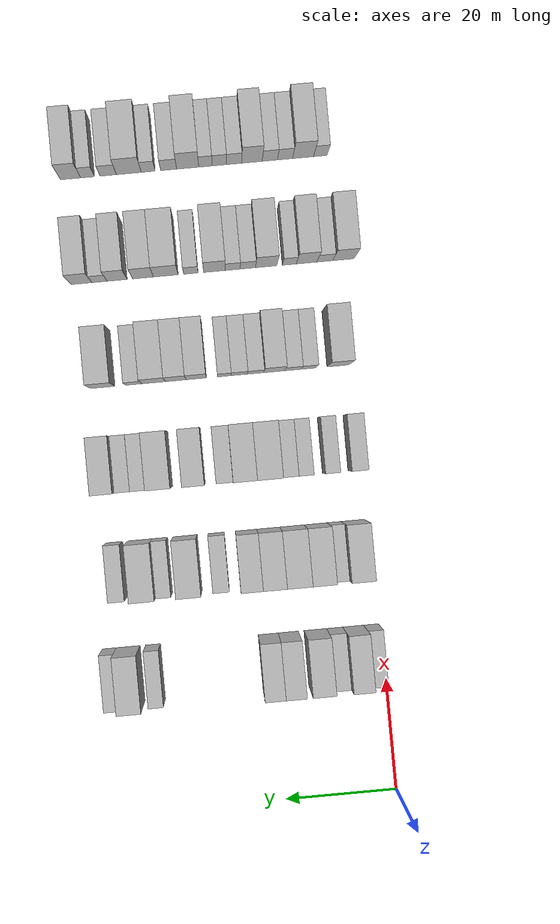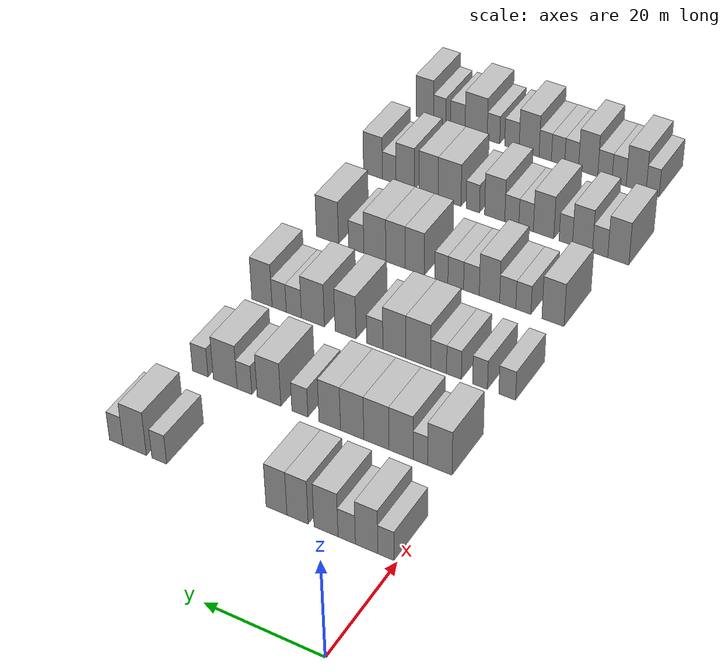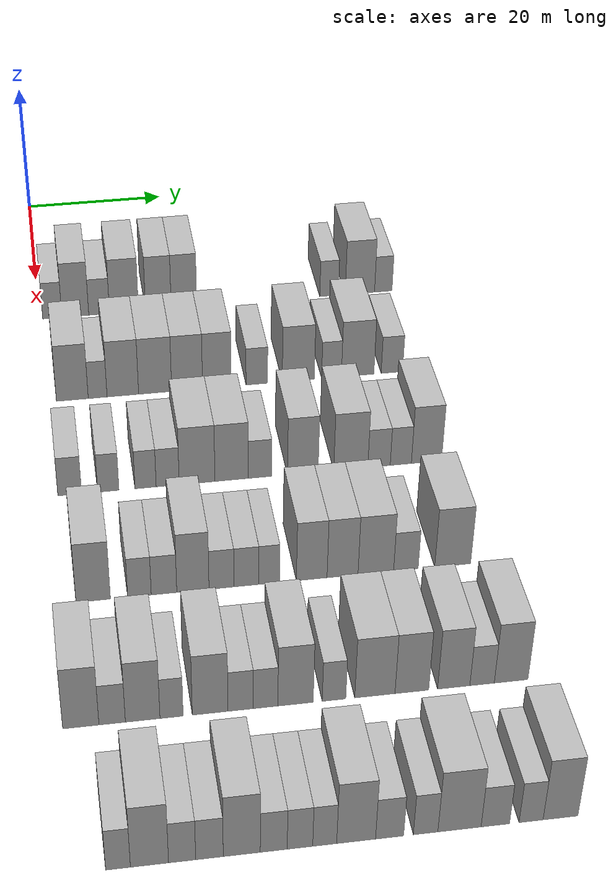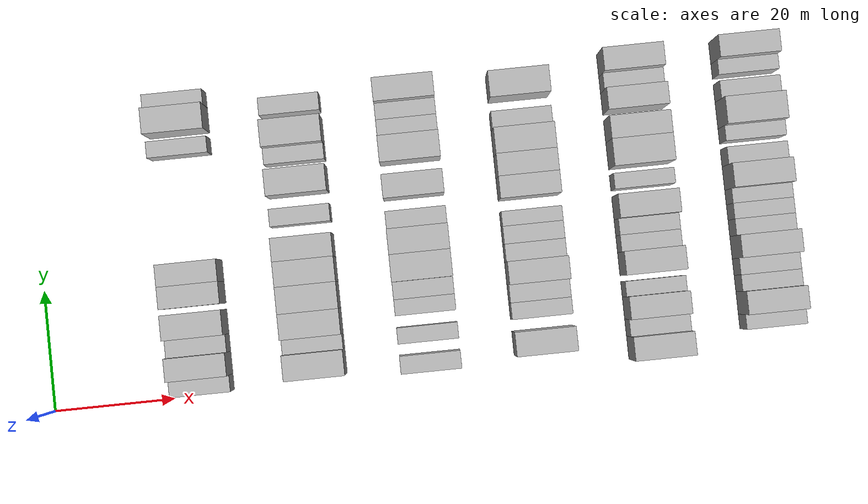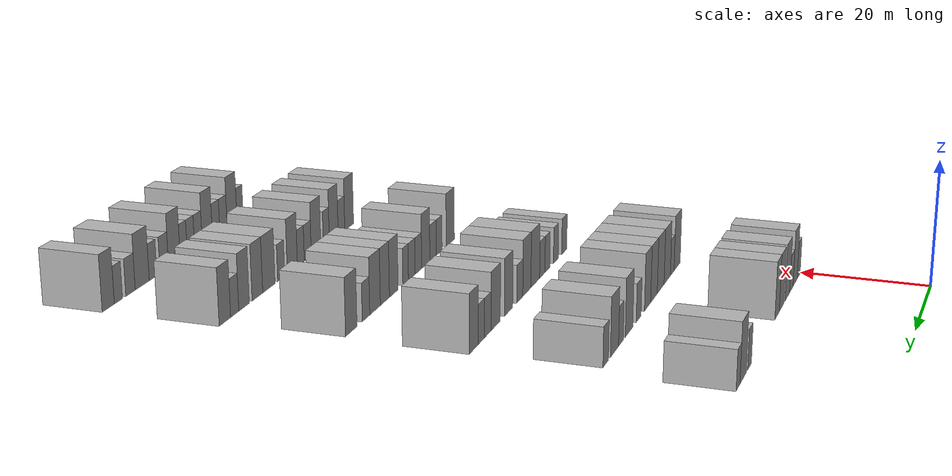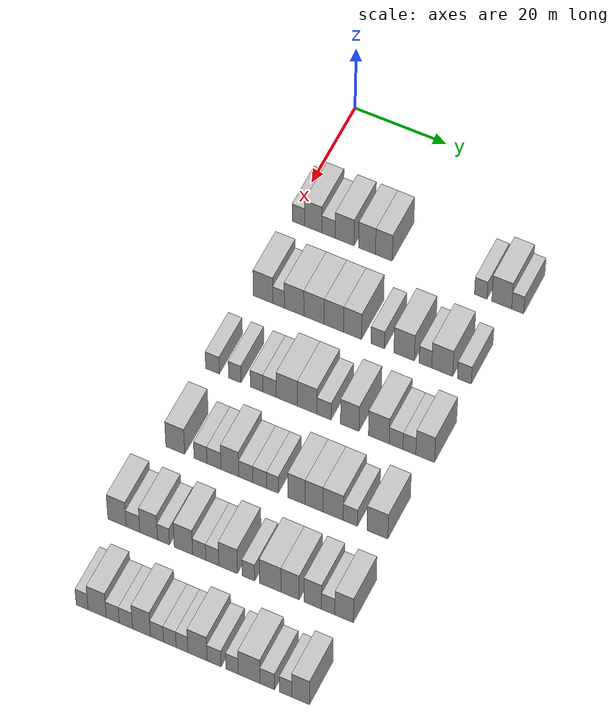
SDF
<sdf version="1.6">
 <world name="default">
  <model name="building_85">
   <static>1</static>
   <pose>25.0000 1.8815 0 0.000000 0.000000 0.000000</pose>
   <link name="link">
    <pose>0 0 3.00 0 0 0</pose>
    <collision name="collision"><geometry><box><size>10.0000 2.6912 6.0000</size></box></geometry></collision>
    <visual name="visual">
     <cast_shadows>0</cast_shadows>
     <geometry><box><size>10.0000 2.6912 6.0000</size></box></geometry>
     <material>
      <script>
       <uri>model://HANNAS_wall/materials/scripts</uri>
       <uri>model://HANNAS_wall/materials/textures</uri>
       <name>vrc/HANNAS_wall</name>
      </script>
     </material>
    </visual>
   </link>
  </model>
  <model name="building_86">
   <static>1</static>
   <pose>25.0000 5.1126 0 0.000000 0.000000 0.000000</pose>
   <link name="link">
    <pose>0 0 4.50 0 0 0</pose>
    <collision name="collision"><geometry><box><size>10.0000 3.7710 9.0000</size></box></geometry></collision>
    <visual name="visual">
     <cast_shadows>0</cast_shadows>
     <geometry><box><size>10.0000 3.7710 9.0000</size></box></geometry>
     <material>
      <script>
       <uri>model://HANNAS_wall/materials/scripts</uri>
       <uri>model://HANNAS_wall/materials/textures</uri>
       <name>vrc/HANNAS_wall</name>
      </script>
     </material>
    </visual>
   </link>
  </model>
  <model name="building_87">
   <static>1</static>
   <pose>25.0000 8.4592 0 0.000000 0.000000 0.000000</pose>
   <link name="link">
    <pose>0 0 3.00 0 0 0</pose>
    <collision name="collision"><geometry><box><size>10.0000 2.9221 6.0000</size></box></geometry></collision>
    <visual name="visual">
     <cast_shadows>0</cast_shadows>
     <geometry><box><size>10.0000 2.9221 6.0000</size></box></geometry>
     <material>
      <script>
       <uri>model://HANNAS_wall/materials/scripts</uri>
       <uri>model://HANNAS_wall/materials/textures</uri>
       <name>vrc/HANNAS_wall</name>
      </script>
     </material>
    </visual>
   </link>
  </model>
  <model name="building_88">
   <static>1</static>
   <pose>25.0000 11.9677 0 0.000000 0.000000 0.000000</pose>
   <link name="link">
    <pose>0 0 4.50 0 0 0</pose>
    <collision name="collision"><geometry><box><size>10.0000 4.0948 9.0000</size></box></geometry></collision>
    <visual name="visual">
     <cast_shadows>0</cast_shadows>
     <geometry><box><size>10.0000 4.0948 9.0000</size></box></geometry>
     <material>
      <script>
       <uri>model://HANNAS_wall/materials/scripts</uri>
       <uri>model://HANNAS_wall/materials/textures</uri>
       <name>vrc/HANNAS_wall</name>
      </script>
     </material>
    </visual>
   </link>
  </model>
  <model name="building_89">
   <static>1</static>
   <pose>25.0000 16.8362 0 0.000000 0.000000 0.000000</pose>
   <link name="link">
    <pose>0 0 4.50 0 0 0</pose>
    <collision name="collision"><geometry><box><size>10.0000 3.6422 9.0000</size></box></geometry></collision>
    <visual name="visual">
     <cast_shadows>0</cast_shadows>
     <geometry><box><size>10.0000 3.6422 9.0000</size></box></geometry>
     <material>
      <script>
       <uri>model://HANNAS_wall/materials/scripts</uri>
       <uri>model://HANNAS_wall/materials/textures</uri>
       <name>vrc/HANNAS_wall</name>
      </script>
     </material>
    </visual>
   </link>
  </model>
  <model name="building_90">
   <static>1</static>
   <pose>25.0000 20.4708 0 0.000000 0.000000 0.000000</pose>
   <link name="link">
    <pose>0 0 4.50 0 0 0</pose>
    <collision name="collision"><geometry><box><size>10.0000 3.6269 9.0000</size></box></geometry></collision>
    <visual name="visual">
     <cast_shadows>0</cast_shadows>
     <geometry><box><size>10.0000 3.6269 9.0000</size></box></geometry>
     <material>
      <script>
       <uri>model://HANNAS_wall/materials/scripts</uri>
       <uri>model://HANNAS_wall/materials/textures</uri>
       <name>vrc/HANNAS_wall</name>
      </script>
     </material>
    </visual>
   </link>
  </model>
  <model name="building_91">
   <static>1</static>
   <pose>25.0000 41.3235 0 0.000000 0.000000 0.000000</pose>
   <link name="link">
    <pose>0 0 3.00 0 0 0</pose>
    <collision name="collision"><geometry><box><size>10.0000 2.6928 6.0000</size></box></geometry></collision>
    <visual name="visual">
     <cast_shadows>0</cast_shadows>
     <geometry><box><size>10.0000 2.6928 6.0000</size></box></geometry>
     <material>
      <script>
       <uri>model://HANNAS_wall/materials/scripts</uri>
       <uri>model://HANNAS_wall/materials/textures</uri>
       <name>vrc/HANNAS_wall</name>
      </script>
     </material>
    </visual>
   </link>
  </model>
  <model name="building_92">
   <static>1</static>
   <pose>25.0000 45.8018 0 0.000000 0.000000 0.000000</pose>
   <link name="link">
    <pose>0 0 4.50 0 0 0</pose>
    <collision name="collision"><geometry><box><size>10.0000 4.2638 9.0000</size></box></geometry></collision>
    <visual name="visual">
     <cast_shadows>0</cast_shadows>
     <geometry><box><size>10.0000 4.2638 9.0000</size></box></geometry>
     <material>
      <script>
       <uri>model://HANNAS_wall/materials/scripts</uri>
       <uri>model://HANNAS_wall/materials/textures</uri>
       <name>vrc/HANNAS_wall</name>
      </script>
     </material>
    </visual>
   </link>
  </model>
  <model name="building_93">
   <static>1</static>
   <pose>25.0000 49.2049 0 0.000000 0.000000 0.000000</pose>
   <link name="link">
    <pose>0 0 3.00 0 0 0</pose>
    <collision name="collision"><geometry><box><size>10.0000 2.5425 6.0000</size></box></geometry></collision>
    <visual name="visual">
     <cast_shadows>0</cast_shadows>
     <geometry><box><size>10.0000 2.5425 6.0000</size></box></geometry>
     <material>
      <script>
       <uri>model://HANNAS_wall/materials/scripts</uri>
       <uri>model://HANNAS_wall/materials/textures</uri>
       <name>vrc/HANNAS_wall</name>
      </script>
     </material>
    </visual>
   </link>
  </model>
  <model name="building_255">
   <static>1</static>
   <pose>44.0000 3.5003 0 0.000000 0.000000 0.000000</pose>
   <link name="link">
    <pose>0 0 4.50 0 0 0</pose>
    <collision name="collision"><geometry><box><size>10.0000 4.2060 9.0000</size></box></geometry></collision>
    <visual name="visual">
     <cast_shadows>0</cast_shadows>
     <geometry><box><size>10.0000 4.2060 9.0000</size></box></geometry>
     <material>
      <script>
       <uri>model://HANNAS_wall/materials/scripts</uri>
       <uri>model://HANNAS_wall/materials/textures</uri>
       <name>vrc/HANNAS_wall</name>
      </script>
     </material>
    </visual>
   </link>
  </model>
  <model name="building_256">
   <static>1</static>
   <pose>44.0000 6.8489 0 0.000000 0.000000 0.000000</pose>
   <link name="link">
    <pose>0 0 3.00 0 0 0</pose>
    <collision name="collision"><geometry><box><size>10.0000 2.4912 6.0000</size></box></geometry></collision>
    <visual name="visual">
     <cast_shadows>0</cast_shadows>
     <geometry><box><size>10.0000 2.4912 6.0000</size></box></geometry>
     <material>
      <script>
       <uri>model://HANNAS_wall/materials/scripts</uri>
       <uri>model://HANNAS_wall/materials/textures</uri>
       <name>vrc/HANNAS_wall</name>
      </script>
     </material>
    </visual>
   </link>
  </model>
  <model name="building_257">
   <static>1</static>
   <pose>44.0000 10.1941 0 0.000000 0.000000 0.000000</pose>
   <link name="link">
    <pose>0 0 4.50 0 0 0</pose>
    <collision name="collision"><geometry><box><size>10.0000 4.1992 9.0000</size></box></geometry></collision>
    <visual name="visual">
     <cast_shadows>0</cast_shadows>
     <geometry><box><size>10.0000 4.1992 9.0000</size></box></geometry>
     <material>
      <script>
       <uri>model://HANNAS_wall/materials/scripts</uri>
       <uri>model://HANNAS_wall/materials/textures</uri>
       <name>vrc/HANNAS_wall</name>
      </script>
     </material>
    </visual>
   </link>
  </model>
  <model name="building_258">
   <static>1</static>
   <pose>44.0000 14.4995 0 0.000000 0.000000 0.000000</pose>
   <link name="link">
    <pose>0 0 4.50 0 0 0</pose>
    <collision name="collision"><geometry><box><size>10.0000 4.4117 9.0000</size></box></geometry></collision>
    <visual name="visual">
     <cast_shadows>0</cast_shadows>
     <geometry><box><size>10.0000 4.4117 9.0000</size></box></geometry>
     <material>
      <script>
       <uri>model://HANNAS_wall/materials/scripts</uri>
       <uri>model://HANNAS_wall/materials/textures</uri>
       <name>vrc/HANNAS_wall</name>
      </script>
     </material>
    </visual>
   </link>
  </model>
  <model name="building_259">
   <static>1</static>
   <pose>44.0000 18.7739 0 0.000000 0.000000 0.000000</pose>
   <link name="link">
    <pose>0 0 4.50 0 0 0</pose>
    <collision name="collision"><geometry><box><size>10.0000 4.1373 9.0000</size></box></geometry></collision>
    <visual name="visual">
     <cast_shadows>0</cast_shadows>
     <geometry><box><size>10.0000 4.1373 9.0000</size></box></geometry>
     <material>
      <script>
       <uri>model://HANNAS_wall/materials/scripts</uri>
       <uri>model://HANNAS_wall/materials/textures</uri>
       <name>vrc/HANNAS_wall</name>
      </script>
     </material>
    </visual>
   </link>
  </model>
  <model name="building_260">
   <static>1</static>
   <pose>44.0000 22.7693 0 0.000000 0.000000 0.000000</pose>
   <link name="link">
    <pose>0 0 4.50 0 0 0</pose>
    <collision name="collision"><geometry><box><size>10.0000 3.8533 9.0000</size></box></geometry></collision>
    <visual name="visual">
     <cast_shadows>0</cast_shadows>
     <geometry><box><size>10.0000 3.8533 9.0000</size></box></geometry>
     <material>
      <script>
       <uri>model://HANNAS_wall/materials/scripts</uri>
       <uri>model://HANNAS_wall/materials/textures</uri>
       <name>vrc/HANNAS_wall</name>
      </script>
     </material>
    </visual>
   </link>
  </model>
  <model name="building_261">
   <static>1</static>
   <pose>44.0000 28.1462 0 0.000000 0.000000 0.000000</pose>
   <link name="link">
    <pose>0 0 3.00 0 0 0</pose>
    <collision name="collision"><geometry><box><size>10.0000 2.9004 6.0000</size></box></geometry></collision>
    <visual name="visual">
     <cast_shadows>0</cast_shadows>
     <geometry><box><size>10.0000 2.9004 6.0000</size></box></geometry>
     <material>
      <script>
       <uri>model://HANNAS_wall/materials/scripts</uri>
       <uri>model://HANNAS_wall/materials/textures</uri>
       <name>vrc/HANNAS_wall</name>
      </script>
     </material>
    </visual>
   </link>
  </model>
  <model name="building_262">
   <static>1</static>
   <pose>44.0000 33.7725 0 0.000000 0.000000 0.000000</pose>
   <link name="link">
    <pose>0 0 4.50 0 0 0</pose>
    <collision name="collision"><geometry><box><size>10.0000 4.3523 9.0000</size></box></geometry></collision>
    <visual name="visual">
     <cast_shadows>0</cast_shadows>
     <geometry><box><size>10.0000 4.3523 9.0000</size></box></geometry>
     <material>
      <script>
       <uri>model://HANNAS_wall/materials/scripts</uri>
       <uri>model://HANNAS_wall/materials/textures</uri>
       <name>vrc/HANNAS_wall</name>
      </script>
     </material>
    </visual>
   </link>
  </model>
  <model name="building_263">
   <static>1</static>
   <pose>44.0000 38.2963 0 0.000000 0.000000 0.000000</pose>
   <link name="link">
    <pose>0 0 3.00 0 0 0</pose>
    <collision name="collision"><geometry><box><size>10.0000 2.6953 6.0000</size></box></geometry></collision>
    <visual name="visual">
     <cast_shadows>0</cast_shadows>
     <geometry><box><size>10.0000 2.6953 6.0000</size></box></geometry>
     <material>
      <script>
       <uri>model://HANNAS_wall/materials/scripts</uri>
       <uri>model://HANNAS_wall/materials/textures</uri>
       <name>vrc/HANNAS_wall</name>
      </script>
     </material>
    </visual>
   </link>
  </model>
  <model name="building_264">
   <static>1</static>
   <pose>44.0000 41.8686 0 0.000000 0.000000 0.000000</pose>
   <link name="link">
    <pose>0 0 4.50 0 0 0</pose>
    <collision name="collision"><geometry><box><size>10.0000 4.4491 9.0000</size></box></geometry></collision>
    <visual name="visual">
     <cast_shadows>0</cast_shadows>
     <geometry><box><size>10.0000 4.4491 9.0000</size></box></geometry>
     <material>
      <script>
       <uri>model://HANNAS_wall/materials/scripts</uri>
       <uri>model://HANNAS_wall/materials/textures</uri>
       <name>vrc/HANNAS_wall</name>
      </script>
     </material>
    </visual>
   </link>
  </model>
  <model name="building_265">
   <static>1</static>
   <pose>44.0000 46.5612 0 0.000000 0.000000 0.000000</pose>
   <link name="link">
    <pose>0 0 3.00 0 0 0</pose>
    <collision name="collision"><geometry><box><size>10.0000 2.9361 6.0000</size></box></geometry></collision>
    <visual name="visual">
     <cast_shadows>0</cast_shadows>
     <geometry><box><size>10.0000 2.9361 6.0000</size></box></geometry>
     <material>
      <script>
       <uri>model://HANNAS_wall/materials/scripts</uri>
       <uri>model://HANNAS_wall/materials/textures</uri>
       <name>vrc/HANNAS_wall</name>
      </script>
     </material>
    </visual>
   </link>
  </model>
  <model name="building_413">
   <static>1</static>
   <pose>63.0000 1.9904 0 0.000000 0.000000 0.000000</pose>
   <link name="link">
    <pose>0 0 3.00 0 0 0</pose>
    <collision name="collision"><geometry><box><size>10.0000 2.9390 6.0000</size></box></geometry></collision>
    <visual name="visual">
     <cast_shadows>0</cast_shadows>
     <geometry><box><size>10.0000 2.9390 6.0000</size></box></geometry>
     <material>
      <script>
       <uri>model://HANNAS_wall/materials/scripts</uri>
       <uri>model://HANNAS_wall/materials/textures</uri>
       <name>vrc/HANNAS_wall</name>
      </script>
     </material>
    </visual>
   </link>
  </model>
  <model name="building_414">
   <static>1</static>
   <pose>63.0000 6.7818 0 0.000000 0.000000 0.000000</pose>
   <link name="link">
    <pose>0 0 3.00 0 0 0</pose>
    <collision name="collision"><geometry><box><size>10.0000 2.6438 6.0000</size></box></geometry></collision>
    <visual name="visual">
     <cast_shadows>0</cast_shadows>
     <geometry><box><size>10.0000 2.6438 6.0000</size></box></geometry>
     <material>
      <script>
       <uri>model://HANNAS_wall/materials/scripts</uri>
       <uri>model://HANNAS_wall/materials/textures</uri>
       <name>vrc/HANNAS_wall</name>
      </script>
     </material>
    </visual>
   </link>
  </model>
  <model name="building_415">
   <static>1</static>
   <pose>63.0000 11.4247 0 0.000000 0.000000 0.000000</pose>
   <link name="link">
    <pose>0 0 3.00 0 0 0</pose>
    <collision name="collision"><geometry><box><size>10.0000 2.6420 6.0000</size></box></geometry></collision>
    <visual name="visual">
     <cast_shadows>0</cast_shadows>
     <geometry><box><size>10.0000 2.6420 6.0000</size></box></geometry>
     <material>
      <script>
       <uri>model://HANNAS_wall/materials/scripts</uri>
       <uri>model://HANNAS_wall/materials/textures</uri>
       <name>vrc/HANNAS_wall</name>
      </script>
     </material>
    </visual>
   </link>
  </model>
  <model name="building_416">
   <static>1</static>
   <pose>63.0000 14.1887 0 0.000000 0.000000 0.000000</pose>
   <link name="link">
    <pose>0 0 3.00 0 0 0</pose>
    <collision name="collision"><geometry><box><size>10.0000 2.8860 6.0000</size></box></geometry></collision>
    <visual name="visual">
     <cast_shadows>0</cast_shadows>
     <geometry><box><size>10.0000 2.8860 6.0000</size></box></geometry>
     <material>
      <script>
       <uri>model://HANNAS_wall/materials/scripts</uri>
       <uri>model://HANNAS_wall/materials/textures</uri>
       <name>vrc/HANNAS_wall</name>
      </script>
     </material>
    </visual>
   </link>
  </model>
  <model name="building_417">
   <static>1</static>
   <pose>63.0000 17.8722 0 0.000000 0.000000 0.000000</pose>
   <link name="link">
    <pose>0 0 4.50 0 0 0</pose>
    <collision name="collision"><geometry><box><size>10.0000 4.4809 9.0000</size></box></geometry></collision>
    <visual name="visual">
     <cast_shadows>0</cast_shadows>
     <geometry><box><size>10.0000 4.4809 9.0000</size></box></geometry>
     <material>
      <script>
       <uri>model://HANNAS_wall/materials/scripts</uri>
       <uri>model://HANNAS_wall/materials/textures</uri>
       <name>vrc/HANNAS_wall</name>
      </script>
     </material>
    </visual>
   </link>
  </model>
  <model name="building_418">
   <static>1</static>
   <pose>63.0000 22.2134 0 0.000000 0.000000 0.000000</pose>
   <link name="link">
    <pose>0 0 4.50 0 0 0</pose>
    <collision name="collision"><geometry><box><size>10.0000 4.2014 9.0000</size></box></geometry></collision>
    <visual name="visual">
     <cast_shadows>0</cast_shadows>
     <geometry><box><size>10.0000 4.2014 9.0000</size></box></geometry>
     <material>
      <script>
       <uri>model://HANNAS_wall/materials/scripts</uri>
       <uri>model://HANNAS_wall/materials/textures</uri>
       <name>vrc/HANNAS_wall</name>
      </script>
     </material>
    </visual>
   </link>
  </model>
  <model name="building_419">
   <static>1</static>
   <pose>63.0000 25.8032 0 0.000000 0.000000 0.000000</pose>
   <link name="link">
    <pose>0 0 3.00 0 0 0</pose>
    <collision name="collision"><geometry><box><size>10.0000 2.9782 6.0000</size></box></geometry></collision>
    <visual name="visual">
     <cast_shadows>0</cast_shadows>
     <geometry><box><size>10.0000 2.9782 6.0000</size></box></geometry>
     <material>
      <script>
       <uri>model://HANNAS_wall/materials/scripts</uri>
       <uri>model://HANNAS_wall/materials/textures</uri>
       <name>vrc/HANNAS_wall</name>
      </script>
     </material>
    </visual>
   </link>
  </model>
  <model name="building_420">
   <static>1</static>
   <pose>63.0000 31.2468 0 0.000000 0.000000 0.000000</pose>
   <link name="link">
    <pose>0 0 4.50 0 0 0</pose>
    <collision name="collision"><geometry><box><size>10.0000 3.9089 9.0000</size></box></geometry></collision>
    <visual name="visual">
     <cast_shadows>0</cast_shadows>
     <geometry><box><size>10.0000 3.9089 9.0000</size></box></geometry>
     <material>
      <script>
       <uri>model://HANNAS_wall/materials/scripts</uri>
       <uri>model://HANNAS_wall/materials/textures</uri>
       <name>vrc/HANNAS_wall</name>
      </script>
     </material>
    </visual>
   </link>
  </model>
  <model name="building_421">
   <static>1</static>
   <pose>63.0000 37.3847 0 0.000000 0.000000 0.000000</pose>
   <link name="link">
    <pose>0 0 4.50 0 0 0</pose>
    <collision name="collision"><geometry><box><size>10.0000 4.3669 9.0000</size></box></geometry></collision>
    <visual name="visual">
     <cast_shadows>0</cast_shadows>
     <geometry><box><size>10.0000 4.3669 9.0000</size></box></geometry>
     <material>
      <script>
       <uri>model://HANNAS_wall/materials/scripts</uri>
       <uri>model://HANNAS_wall/materials/textures</uri>
       <name>vrc/HANNAS_wall</name>
      </script>
     </material>
    </visual>
   </link>
  </model>
  <model name="building_422">
   <static>1</static>
   <pose>63.0000 41.0091 0 0.000000 0.000000 0.000000</pose>
   <link name="link">
    <pose>0 0 3.00 0 0 0</pose>
    <collision name="collision"><geometry><box><size>10.0000 2.8818 6.0000</size></box></geometry></collision>
    <visual name="visual">
     <cast_shadows>0</cast_shadows>
     <geometry><box><size>10.0000 2.8818 6.0000</size></box></geometry>
     <material>
      <script>
       <uri>model://HANNAS_wall/materials/scripts</uri>
       <uri>model://HANNAS_wall/materials/textures</uri>
       <name>vrc/HANNAS_wall</name>
      </script>
     </material>
    </visual>
   </link>
  </model>
  <model name="building_423">
   <static>1</static>
   <pose>63.0000 43.8126 0 0.000000 0.000000 0.000000</pose>
   <link name="link">
    <pose>0 0 3.00 0 0 0</pose>
    <collision name="collision"><geometry><box><size>10.0000 2.7251 6.0000</size></box></geometry></collision>
    <visual name="visual">
     <cast_shadows>0</cast_shadows>
     <geometry><box><size>10.0000 2.7251 6.0000</size></box></geometry>
     <material>
      <script>
       <uri>model://HANNAS_wall/materials/scripts</uri>
       <uri>model://HANNAS_wall/materials/textures</uri>
       <name>vrc/HANNAS_wall</name>
      </script>
     </material>
    </visual>
   </link>
  </model>
  <model name="building_424">
   <static>1</static>
   <pose>63.0000 47.1260 0 0.000000 0.000000 0.000000</pose>
   <link name="link">
    <pose>0 0 4.50 0 0 0</pose>
    <collision name="collision"><geometry><box><size>10.0000 3.9017 9.0000</size></box></geometry></collision>
    <visual name="visual">
     <cast_shadows>0</cast_shadows>
     <geometry><box><size>10.0000 3.9017 9.0000</size></box></geometry>
     <material>
      <script>
       <uri>model://HANNAS_wall/materials/scripts</uri>
       <uri>model://HANNAS_wall/materials/textures</uri>
       <name>vrc/HANNAS_wall</name>
      </script>
     </material>
    </visual>
   </link>
  </model>
  <model name="building_595">
   <static>1</static>
   <pose>82.0000 3.5405 0 0.000000 0.000000 0.000000</pose>
   <link name="link">
    <pose>0 0 4.50 0 0 0</pose>
    <collision name="collision"><geometry><box><size>10.0000 3.9927 9.0000</size></box></geometry></collision>
    <visual name="visual">
     <cast_shadows>0</cast_shadows>
     <geometry><box><size>10.0000 3.9927 9.0000</size></box></geometry>
     <material>
      <script>
       <uri>model://HANNAS_wall/materials/scripts</uri>
       <uri>model://HANNAS_wall/materials/textures</uri>
       <name>vrc/HANNAS_wall</name>
      </script>
     </material>
    </visual>
   </link>
  </model>
  <model name="building_596">
   <static>1</static>
   <pose>82.0000 8.9107 0 0.000000 0.000000 0.000000</pose>
   <link name="link">
    <pose>0 0 3.00 0 0 0</pose>
    <collision name="collision"><geometry><box><size>10.0000 2.7477 6.0000</size></box></geometry></collision>
    <visual name="visual">
     <cast_shadows>0</cast_shadows>
     <geometry><box><size>10.0000 2.7477 6.0000</size></box></geometry>
     <material>
      <script>
       <uri>model://HANNAS_wall/materials/scripts</uri>
       <uri>model://HANNAS_wall/materials/textures</uri>
       <name>vrc/HANNAS_wall</name>
      </script>
     </material>
    </visual>
   </link>
  </model>
  <model name="building_597">
   <static>1</static>
   <pose>82.0000 11.7747 0 0.000000 0.000000 0.000000</pose>
   <link name="link">
    <pose>0 0 3.00 0 0 0</pose>
    <collision name="collision"><geometry><box><size>10.0000 2.9802 6.0000</size></box></geometry></collision>
    <visual name="visual">
     <cast_shadows>0</cast_shadows>
     <geometry><box><size>10.0000 2.9802 6.0000</size></box></geometry>
     <material>
      <script>
       <uri>model://HANNAS_wall/materials/scripts</uri>
       <uri>model://HANNAS_wall/materials/textures</uri>
       <name>vrc/HANNAS_wall</name>
      </script>
     </material>
    </visual>
   </link>
  </model>
  <model name="building_598">
   <static>1</static>
   <pose>82.0000 15.1513 0 0.000000 0.000000 0.000000</pose>
   <link name="link">
    <pose>0 0 4.50 0 0 0</pose>
    <collision name="collision"><geometry><box><size>10.0000 3.7731 9.0000</size></box></geometry></collision>
    <visual name="visual">
     <cast_shadows>0</cast_shadows>
     <geometry><box><size>10.0000 3.7731 9.0000</size></box></geometry>
     <material>
      <script>
       <uri>model://HANNAS_wall/materials/scripts</uri>
       <uri>model://HANNAS_wall/materials/textures</uri>
       <name>vrc/HANNAS_wall</name>
      </script>
     </material>
    </visual>
   </link>
  </model>
  <model name="building_599">
   <static>1</static>
   <pose>82.0000 18.5025 0 0.000000 0.000000 0.000000</pose>
   <link name="link">
    <pose>0 0 3.00 0 0 0</pose>
    <collision name="collision"><geometry><box><size>10.0000 2.9293 6.0000</size></box></geometry></collision>
    <visual name="visual">
     <cast_shadows>0</cast_shadows>
     <geometry><box><size>10.0000 2.9293 6.0000</size></box></geometry>
     <material>
      <script>
       <uri>model://HANNAS_wall/materials/scripts</uri>
       <uri>model://HANNAS_wall/materials/textures</uri>
       <name>vrc/HANNAS_wall</name>
      </script>
     </material>
    </visual>
   </link>
  </model>
  <model name="building_600">
   <static>1</static>
   <pose>82.0000 21.4356 0 0.000000 0.000000 0.000000</pose>
   <link name="link">
    <pose>0 0 3.00 0 0 0</pose>
    <collision name="collision"><geometry><box><size>10.0000 2.9370 6.0000</size></box></geometry></collision>
    <visual name="visual">
     <cast_shadows>0</cast_shadows>
     <geometry><box><size>10.0000 2.9370 6.0000</size></box></geometry>
     <material>
      <script>
       <uri>model://HANNAS_wall/materials/scripts</uri>
       <uri>model://HANNAS_wall/materials/textures</uri>
       <name>vrc/HANNAS_wall</name>
      </script>
     </material>
    </visual>
   </link>
  </model>
  <model name="building_601">
   <static>1</static>
   <pose>82.0000 24.1280 0 0.000000 0.000000 0.000000</pose>
   <link name="link">
    <pose>0 0 3.00 0 0 0</pose>
    <collision name="collision"><geometry><box><size>10.0000 2.4477 6.0000</size></box></geometry></collision>
    <visual name="visual">
     <cast_shadows>0</cast_shadows>
     <geometry><box><size>10.0000 2.4477 6.0000</size></box></geometry>
     <material>
      <script>
       <uri>model://HANNAS_wall/materials/scripts</uri>
       <uri>model://HANNAS_wall/materials/textures</uri>
       <name>vrc/HANNAS_wall</name>
      </script>
     </material>
    </visual>
   </link>
  </model>
  <model name="building_602">
   <static>1</static>
   <pose>82.0000 29.1756 0 0.000000 0.000000 0.000000</pose>
   <link name="link">
    <pose>0 0 4.50 0 0 0</pose>
    <collision name="collision"><geometry><box><size>10.0000 3.6475 9.0000</size></box></geometry></collision>
    <visual name="visual">
     <cast_shadows>0</cast_shadows>
     <geometry><box><size>10.0000 3.6475 9.0000</size></box></geometry>
     <material>
      <script>
       <uri>model://HANNAS_wall/materials/scripts</uri>
       <uri>model://HANNAS_wall/materials/textures</uri>
       <name>vrc/HANNAS_wall</name>
      </script>
     </material>
    </visual>
   </link>
  </model>
  <model name="building_603">
   <static>1</static>
   <pose>82.0000 32.8497 0 0.000000 0.000000 0.000000</pose>
   <link name="link">
    <pose>0 0 4.50 0 0 0</pose>
    <collision name="collision"><geometry><box><size>10.0000 3.7008 9.0000</size></box></geometry></collision>
    <visual name="visual">
     <cast_shadows>0</cast_shadows>
     <geometry><box><size>10.0000 3.7008 9.0000</size></box></geometry>
     <material>
      <script>
       <uri>model://HANNAS_wall/materials/scripts</uri>
       <uri>model://HANNAS_wall/materials/textures</uri>
       <name>vrc/HANNAS_wall</name>
      </script>
     </material>
    </visual>
   </link>
  </model>
  <model name="building_604">
   <static>1</static>
   <pose>82.0000 36.8340 0 0.000000 0.000000 0.000000</pose>
   <link name="link">
    <pose>0 0 4.50 0 0 0</pose>
    <collision name="collision"><geometry><box><size>10.0000 4.2678 9.0000</size></box></geometry></collision>
    <visual name="visual">
     <cast_shadows>0</cast_shadows>
     <geometry><box><size>10.0000 4.2678 9.0000</size></box></geometry>
     <material>
      <script>
       <uri>model://HANNAS_wall/materials/scripts</uri>
       <uri>model://HANNAS_wall/materials/textures</uri>
       <name>vrc/HANNAS_wall</name>
      </script>
     </material>
    </visual>
   </link>
  </model>
  <model name="building_605">
   <static>1</static>
   <pose>82.0000 40.4438 0 0.000000 0.000000 0.000000</pose>
   <link name="link">
    <pose>0 0 3.00 0 0 0</pose>
    <collision name="collision"><geometry><box><size>10.0000 2.9517 6.0000</size></box></geometry></collision>
    <visual name="visual">
     <cast_shadows>0</cast_shadows>
     <geometry><box><size>10.0000 2.9517 6.0000</size></box></geometry>
     <material>
      <script>
       <uri>model://HANNAS_wall/materials/scripts</uri>
       <uri>model://HANNAS_wall/materials/textures</uri>
       <name>vrc/HANNAS_wall</name>
      </script>
     </material>
    </visual>
   </link>
  </model>
  <model name="building_606">
   <static>1</static>
   <pose>82.0000 46.0909 0 0.000000 0.000000 0.000000</pose>
   <link name="link">
    <pose>0 0 4.50 0 0 0</pose>
    <collision name="collision"><geometry><box><size>10.0000 4.3425 9.0000</size></box></geometry></collision>
    <visual name="visual">
     <cast_shadows>0</cast_shadows>
     <geometry><box><size>10.0000 4.3425 9.0000</size></box></geometry>
     <material>
      <script>
       <uri>model://HANNAS_wall/materials/scripts</uri>
       <uri>model://HANNAS_wall/materials/textures</uri>
       <name>vrc/HANNAS_wall</name>
      </script>
     </material>
    </visual>
   </link>
  </model>
  <model name="building_764">
   <static>1</static>
   <pose>101.0000 0.8503 0 0.000000 0.000000 0.000000</pose>
   <link name="link">
    <pose>0 0 4.50 0 0 0</pose>
    <collision name="collision"><geometry><box><size>10.0000 3.8873 9.0000</size></box></geometry></collision>
    <visual name="visual">
     <cast_shadows>0</cast_shadows>
     <geometry><box><size>10.0000 3.8873 9.0000</size></box></geometry>
     <material>
      <script>
       <uri>model://HANNAS_wall/materials/scripts</uri>
       <uri>model://HANNAS_wall/materials/textures</uri>
       <name>vrc/HANNAS_wall</name>
      </script>
     </material>
    </visual>
   </link>
  </model>
  <model name="building_765">
   <static>1</static>
   <pose>101.0000 4.2175 0 0.000000 0.000000 0.000000</pose>
   <link name="link">
    <pose>0 0 3.00 0 0 0</pose>
    <collision name="collision"><geometry><box><size>10.0000 2.8471 6.0000</size></box></geometry></collision>
    <visual name="visual">
     <cast_shadows>0</cast_shadows>
     <geometry><box><size>10.0000 2.8471 6.0000</size></box></geometry>
     <material>
      <script>
       <uri>model://HANNAS_wall/materials/scripts</uri>
       <uri>model://HANNAS_wall/materials/textures</uri>
       <name>vrc/HANNAS_wall</name>
      </script>
     </material>
    </visual>
   </link>
  </model>
  <model name="building_766">
   <static>1</static>
   <pose>101.0000 7.5099 0 0.000000 0.000000 0.000000</pose>
   <link name="link">
    <pose>0 0 4.50 0 0 0</pose>
    <collision name="collision"><geometry><box><size>10.0000 3.7375 9.0000</size></box></geometry></collision>
    <visual name="visual">
     <cast_shadows>0</cast_shadows>
     <geometry><box><size>10.0000 3.7375 9.0000</size></box></geometry>
     <material>
      <script>
       <uri>model://HANNAS_wall/materials/scripts</uri>
       <uri>model://HANNAS_wall/materials/textures</uri>
       <name>vrc/HANNAS_wall</name>
      </script>
     </material>
    </visual>
   </link>
  </model>
  <model name="building_767">
   <static>1</static>
   <pose>101.0000 10.6347 0 0.000000 0.000000 0.000000</pose>
   <link name="link">
    <pose>0 0 3.00 0 0 0</pose>
    <collision name="collision"><geometry><box><size>10.0000 2.5121 6.0000</size></box></geometry></collision>
    <visual name="visual">
     <cast_shadows>0</cast_shadows>
     <geometry><box><size>10.0000 2.5121 6.0000</size></box></geometry>
     <material>
      <script>
       <uri>model://HANNAS_wall/materials/scripts</uri>
       <uri>model://HANNAS_wall/materials/textures</uri>
       <name>vrc/HANNAS_wall</name>
      </script>
     </material>
    </visual>
   </link>
  </model>
  <model name="building_768">
   <static>1</static>
   <pose>101.0000 14.8278 0 0.000000 0.000000 0.000000</pose>
   <link name="link">
    <pose>0 0 4.50 0 0 0</pose>
    <collision name="collision"><geometry><box><size>10.0000 3.8743 9.0000</size></box></geometry></collision>
    <visual name="visual">
     <cast_shadows>0</cast_shadows>
     <geometry><box><size>10.0000 3.8743 9.0000</size></box></geometry>
     <material>
      <script>
       <uri>model://HANNAS_wall/materials/scripts</uri>
       <uri>model://HANNAS_wall/materials/textures</uri>
       <name>vrc/HANNAS_wall</name>
      </script>
     </material>
    </visual>
   </link>
  </model>
  <model name="building_769">
   <static>1</static>
   <pose>101.0000 18.1493 0 0.000000 0.000000 0.000000</pose>
   <link name="link">
    <pose>0 0 3.00 0 0 0</pose>
    <collision name="collision"><geometry><box><size>10.0000 2.7687 6.0000</size></box></geometry></collision>
    <visual name="visual">
     <cast_shadows>0</cast_shadows>
     <geometry><box><size>10.0000 2.7687 6.0000</size></box></geometry>
     <material>
      <script>
       <uri>model://HANNAS_wall/materials/scripts</uri>
       <uri>model://HANNAS_wall/materials/textures</uri>
       <name>vrc/HANNAS_wall</name>
      </script>
     </material>
    </visual>
   </link>
  </model>
  <model name="building_770">
   <static>1</static>
   <pose>101.0000 20.8826 0 0.000000 0.000000 0.000000</pose>
   <link name="link">
    <pose>0 0 3.00 0 0 0</pose>
    <collision name="collision"><geometry><box><size>10.0000 2.6980 6.0000</size></box></geometry></collision>
    <visual name="visual">
     <cast_shadows>0</cast_shadows>
     <geometry><box><size>10.0000 2.6980 6.0000</size></box></geometry>
     <material>
      <script>
       <uri>model://HANNAS_wall/materials/scripts</uri>
       <uri>model://HANNAS_wall/materials/textures</uri>
       <name>vrc/HANNAS_wall</name>
      </script>
     </material>
    </visual>
   </link>
  </model>
  <model name="building_771">
   <static>1</static>
   <pose>101.0000 24.1779 0 0.000000 0.000000 0.000000</pose>
   <link name="link">
    <pose>0 0 4.50 0 0 0</pose>
    <collision name="collision"><geometry><box><size>10.0000 3.8925 9.0000</size></box></geometry></collision>
    <visual name="visual">
     <cast_shadows>0</cast_shadows>
     <geometry><box><size>10.0000 3.8925 9.0000</size></box></geometry>
     <material>
      <script>
       <uri>model://HANNAS_wall/materials/scripts</uri>
       <uri>model://HANNAS_wall/materials/textures</uri>
       <name>vrc/HANNAS_wall</name>
      </script>
     </material>
    </visual>
   </link>
  </model>
  <model name="building_772">
   <static>1</static>
   <pose>101.0000 28.4279 0 0.000000 0.000000 0.000000</pose>
   <link name="link">
    <pose>0 0 3.00 0 0 0</pose>
    <collision name="collision"><geometry><box><size>10.0000 2.6074 6.0000</size></box></geometry></collision>
    <visual name="visual">
     <cast_shadows>0</cast_shadows>
     <geometry><box><size>10.0000 2.6074 6.0000</size></box></geometry>
     <material>
      <script>
       <uri>model://HANNAS_wall/materials/scripts</uri>
       <uri>model://HANNAS_wall/materials/textures</uri>
       <name>vrc/HANNAS_wall</name>
      </script>
     </material>
    </visual>
   </link>
  </model>
  <model name="building_773">
   <static>1</static>
   <pose>101.0000 32.9696 0 0.000000 0.000000 0.000000</pose>
   <link name="link">
    <pose>0 0 4.50 0 0 0</pose>
    <collision name="collision"><geometry><box><size>10.0000 4.4761 9.0000</size></box></geometry></collision>
    <visual name="visual">
     <cast_shadows>0</cast_shadows>
     <geometry><box><size>10.0000 4.4761 9.0000</size></box></geometry>
     <material>
      <script>
       <uri>model://HANNAS_wall/materials/scripts</uri>
       <uri>model://HANNAS_wall/materials/textures</uri>
       <name>vrc/HANNAS_wall</name>
      </script>
     </material>
    </visual>
   </link>
  </model>
  <model name="building_774">
   <static>1</static>
   <pose>101.0000 37.0898 0 0.000000 0.000000 0.000000</pose>
   <link name="link">
    <pose>0 0 4.50 0 0 0</pose>
    <collision name="collision"><geometry><box><size>10.0000 3.7642 9.0000</size></box></geometry></collision>
    <visual name="visual">
     <cast_shadows>0</cast_shadows>
     <geometry><box><size>10.0000 3.7642 9.0000</size></box></geometry>
     <material>
      <script>
       <uri>model://HANNAS_wall/materials/scripts</uri>
       <uri>model://HANNAS_wall/materials/textures</uri>
       <name>vrc/HANNAS_wall</name>
      </script>
     </material>
    </visual>
   </link>
  </model>
  <model name="building_775">
   <static>1</static>
   <pose>101.0000 41.7833 0 0.000000 0.000000 0.000000</pose>
   <link name="link">
    <pose>0 0 4.50 0 0 0</pose>
    <collision name="collision"><geometry><box><size>10.0000 3.6229 9.0000</size></box></geometry></collision>
    <visual name="visual">
     <cast_shadows>0</cast_shadows>
     <geometry><box><size>10.0000 3.6229 9.0000</size></box></geometry>
     <material>
      <script>
       <uri>model://HANNAS_wall/materials/scripts</uri>
       <uri>model://HANNAS_wall/materials/textures</uri>
       <name>vrc/HANNAS_wall</name>
      </script>
     </material>
    </visual>
   </link>
  </model>
  <model name="building_776">
   <static>1</static>
   <pose>101.0000 44.9701 0 0.000000 0.000000 0.000000</pose>
   <link name="link">
    <pose>0 0 3.00 0 0 0</pose>
    <collision name="collision"><geometry><box><size>10.0000 2.7506 6.0000</size></box></geometry></collision>
    <visual name="visual">
     <cast_shadows>0</cast_shadows>
     <geometry><box><size>10.0000 2.7506 6.0000</size></box></geometry>
     <material>
      <script>
       <uri>model://HANNAS_wall/materials/scripts</uri>
       <uri>model://HANNAS_wall/materials/textures</uri>
       <name>vrc/HANNAS_wall</name>
      </script>
     </material>
    </visual>
   </link>
  </model>
  <model name="building_777">
   <static>1</static>
   <pose>101.0000 48.2484 0 0.000000 0.000000 0.000000</pose>
   <link name="link">
    <pose>0 0 4.50 0 0 0</pose>
    <collision name="collision"><geometry><box><size>10.0000 3.8061 9.0000</size></box></geometry></collision>
    <visual name="visual">
     <cast_shadows>0</cast_shadows>
     <geometry><box><size>10.0000 3.8061 9.0000</size></box></geometry>
     <material>
      <script>
       <uri>model://HANNAS_wall/materials/scripts</uri>
       <uri>model://HANNAS_wall/materials/textures</uri>
       <name>vrc/HANNAS_wall</name>
      </script>
     </material>
    </visual>
   </link>
  </model>
  <model name="building_927">
   <static>1</static>
   <pose>120.0000 3.2778 0 0.000000 0.000000 0.000000</pose>
   <link name="link">
    <pose>0 0 3.00 0 0 0</pose>
    <collision name="collision"><geometry><box><size>10.0000 2.4657 6.0000</size></box></geometry></collision>
    <visual name="visual">
     <cast_shadows>0</cast_shadows>
     <geometry><box><size>10.0000 2.4657 6.0000</size></box></geometry>
     <material>
      <script>
       <uri>model://HANNAS_wall/materials/scripts</uri>
       <uri>model://HANNAS_wall/materials/textures</uri>
       <name>vrc/HANNAS_wall</name>
      </script>
     </material>
    </visual>
   </link>
  </model>
  <model name="building_928">
   <static>1</static>
   <pose>120.0000 6.4126 0 0.000000 0.000000 0.000000</pose>
   <link name="link">
    <pose>0 0 4.50 0 0 0</pose>
    <collision name="collision"><geometry><box><size>10.0000 3.8040 9.0000</size></box></geometry></collision>
    <visual name="visual">
     <cast_shadows>0</cast_shadows>
     <geometry><box><size>10.0000 3.8040 9.0000</size></box></geometry>
     <material>
      <script>
       <uri>model://HANNAS_wall/materials/scripts</uri>
       <uri>model://HANNAS_wall/materials/textures</uri>
       <name>vrc/HANNAS_wall</name>
      </script>
     </material>
    </visual>
   </link>
  </model>
  <model name="building_929">
   <static>1</static>
   <pose>120.0000 9.6742 0 0.000000 0.000000 0.000000</pose>
   <link name="link">
    <pose>0 0 3.00 0 0 0</pose>
    <collision name="collision"><geometry><box><size>10.0000 2.7192 6.0000</size></box></geometry></collision>
    <visual name="visual">
     <cast_shadows>0</cast_shadows>
     <geometry><box><size>10.0000 2.7192 6.0000</size></box></geometry>
     <material>
      <script>
       <uri>model://HANNAS_wall/materials/scripts</uri>
       <uri>model://HANNAS_wall/materials/textures</uri>
       <name>vrc/HANNAS_wall</name>
      </script>
     </material>
    </visual>
   </link>
  </model>
  <model name="building_930">
   <static>1</static>
   <pose>120.0000 12.4180 0 0.000000 0.000000 0.000000</pose>
   <link name="link">
    <pose>0 0 3.00 0 0 0</pose>
    <collision name="collision"><geometry><box><size>10.0000 2.7686 6.0000</size></box></geometry></collision>
    <visual name="visual">
     <cast_shadows>0</cast_shadows>
     <geometry><box><size>10.0000 2.7686 6.0000</size></box></geometry>
     <material>
      <script>
       <uri>model://HANNAS_wall/materials/scripts</uri>
       <uri>model://HANNAS_wall/materials/textures</uri>
       <name>vrc/HANNAS_wall</name>
      </script>
     </material>
    </visual>
   </link>
  </model>
  <model name="building_931">
   <static>1</static>
   <pose>120.0000 15.6682 0 0.000000 0.000000 0.000000</pose>
   <link name="link">
    <pose>0 0 4.50 0 0 0</pose>
    <collision name="collision"><geometry><box><size>10.0000 3.7317 9.0000</size></box></geometry></collision>
    <visual name="visual">
     <cast_shadows>0</cast_shadows>
     <geometry><box><size>10.0000 3.7317 9.0000</size></box></geometry>
     <material>
      <script>
       <uri>model://HANNAS_wall/materials/scripts</uri>
       <uri>model://HANNAS_wall/materials/textures</uri>
       <name>vrc/HANNAS_wall</name>
      </script>
     </material>
    </visual>
   </link>
  </model>
  <model name="building_932">
   <static>1</static>
   <pose>120.0000 18.8983 0 0.000000 0.000000 0.000000</pose>
   <link name="link">
    <pose>0 0 3.00 0 0 0</pose>
    <collision name="collision"><geometry><box><size>10.0000 2.7284 6.0000</size></box></geometry></collision>
    <visual name="visual">
     <cast_shadows>0</cast_shadows>
     <geometry><box><size>10.0000 2.7284 6.0000</size></box></geometry>
     <material>
      <script>
       <uri>model://HANNAS_wall/materials/scripts</uri>
       <uri>model://HANNAS_wall/materials/textures</uri>
       <name>vrc/HANNAS_wall</name>
      </script>
     </material>
    </visual>
   </link>
  </model>
  <model name="building_933">
   <static>1</static>
   <pose>120.0000 21.5603 0 0.000000 0.000000 0.000000</pose>
   <link name="link">
    <pose>0 0 3.00 0 0 0</pose>
    <collision name="collision"><geometry><box><size>10.0000 2.5955 6.0000</size></box></geometry></collision>
    <visual name="visual">
     <cast_shadows>0</cast_shadows>
     <geometry><box><size>10.0000 2.5955 6.0000</size></box></geometry>
     <material>
      <script>
       <uri>model://HANNAS_wall/materials/scripts</uri>
       <uri>model://HANNAS_wall/materials/textures</uri>
       <name>vrc/HANNAS_wall</name>
      </script>
     </material>
    </visual>
   </link>
  </model>
  <model name="building_934">
   <static>1</static>
   <pose>120.0000 24.0797 0 0.000000 0.000000 0.000000</pose>
   <link name="link">
    <pose>0 0 3.00 0 0 0</pose>
    <collision name="collision"><geometry><box><size>10.0000 2.4434 6.0000</size></box></geometry></collision>
    <visual name="visual">
     <cast_shadows>0</cast_shadows>
     <geometry><box><size>10.0000 2.4434 6.0000</size></box></geometry>
     <material>
      <script>
       <uri>model://HANNAS_wall/materials/scripts</uri>
       <uri>model://HANNAS_wall/materials/textures</uri>
       <name>vrc/HANNAS_wall</name>
      </script>
     </material>
    </visual>
   </link>
  </model>
  <model name="building_935">
   <static>1</static>
   <pose>120.0000 27.2905 0 0.000000 0.000000 0.000000</pose>
   <link name="link">
    <pose>0 0 4.50 0 0 0</pose>
    <collision name="collision"><geometry><box><size>10.0000 3.9782 9.0000</size></box></geometry></collision>
    <visual name="visual">
     <cast_shadows>0</cast_shadows>
     <geometry><box><size>10.0000 3.9782 9.0000</size></box></geometry>
     <material>
      <script>
       <uri>model://HANNAS_wall/materials/scripts</uri>
       <uri>model://HANNAS_wall/materials/textures</uri>
       <name>vrc/HANNAS_wall</name>
      </script>
     </material>
    </visual>
   </link>
  </model>
  <model name="building_936">
   <static>1</static>
   <pose>120.0000 30.7228 0 0.000000 0.000000 0.000000</pose>
   <link name="link">
    <pose>0 0 3.00 0 0 0</pose>
    <collision name="collision"><geometry><box><size>10.0000 2.8865 6.0000</size></box></geometry></collision>
    <visual name="visual">
     <cast_shadows>0</cast_shadows>
     <geometry><box><size>10.0000 2.8865 6.0000</size></box></geometry>
     <material>
      <script>
       <uri>model://HANNAS_wall/materials/scripts</uri>
       <uri>model://HANNAS_wall/materials/textures</uri>
       <name>vrc/HANNAS_wall</name>
      </script>
     </material>
    </visual>
   </link>
  </model>
  <model name="building_937">
   <static>1</static>
   <pose>120.0000 34.4318 0 0.000000 0.000000 0.000000</pose>
   <link name="link">
    <pose>0 0 3.00 0 0 0</pose>
    <collision name="collision"><geometry><box><size>10.0000 2.5316 6.0000</size></box></geometry></collision>
    <visual name="visual">
     <cast_shadows>0</cast_shadows>
     <geometry><box><size>10.0000 2.5316 6.0000</size></box></geometry>
     <material>
      <script>
       <uri>model://HANNAS_wall/materials/scripts</uri>
       <uri>model://HANNAS_wall/materials/textures</uri>
       <name>vrc/HANNAS_wall</name>
      </script>
     </material>
    </visual>
   </link>
  </model>
  <model name="building_938">
   <static>1</static>
   <pose>120.0000 37.9399 0 0.000000 0.000000 0.000000</pose>
   <link name="link">
    <pose>0 0 4.50 0 0 0</pose>
    <collision name="collision"><geometry><box><size>10.0000 4.4846 9.0000</size></box></geometry></collision>
    <visual name="visual">
     <cast_shadows>0</cast_shadows>
     <geometry><box><size>10.0000 4.4846 9.0000</size></box></geometry>
     <material>
      <script>
       <uri>model://HANNAS_wall/materials/scripts</uri>
       <uri>model://HANNAS_wall/materials/textures</uri>
       <name>vrc/HANNAS_wall</name>
      </script>
     </material>
    </visual>
   </link>
  </model>
  <model name="building_939">
   <static>1</static>
   <pose>120.0000 41.6622 0 0.000000 0.000000 0.000000</pose>
   <link name="link">
    <pose>0 0 3.00 0 0 0</pose>
    <collision name="collision"><geometry><box><size>10.0000 2.9599 6.0000</size></box></geometry></collision>
    <visual name="visual">
     <cast_shadows>0</cast_shadows>
     <geometry><box><size>10.0000 2.9599 6.0000</size></box></geometry>
     <material>
      <script>
       <uri>model://HANNAS_wall/materials/scripts</uri>
       <uri>model://HANNAS_wall/materials/textures</uri>
       <name>vrc/HANNAS_wall</name>
      </script>
     </material>
    </visual>
   </link>
  </model>
  <model name="building_940">
   <static>1</static>
   <pose>120.0000 45.3971 0 0.000000 0.000000 0.000000</pose>
   <link name="link">
    <pose>0 0 3.00 0 0 0</pose>
    <collision name="collision"><geometry><box><size>10.0000 2.5099 6.0000</size></box></geometry></collision>
    <visual name="visual">
     <cast_shadows>0</cast_shadows>
     <geometry><box><size>10.0000 2.5099 6.0000</size></box></geometry>
     <material>
      <script>
       <uri>model://HANNAS_wall/materials/scripts</uri>
       <uri>model://HANNAS_wall/materials/textures</uri>
       <name>vrc/HANNAS_wall</name>
      </script>
     </material>
    </visual>
   </link>
  </model>
  <model name="building_941">
   <static>1</static>
   <pose>120.0000 48.4774 0 0.000000 0.000000 0.000000</pose>
   <link name="link">
    <pose>0 0 4.50 0 0 0</pose>
    <collision name="collision"><geometry><box><size>10.0000 3.6507 9.0000</size></box></geometry></collision>
    <visual name="visual">
     <cast_shadows>0</cast_shadows>
     <geometry><box><size>10.0000 3.6507 9.0000</size></box></geometry>
     <material>
      <script>
       <uri>model://HANNAS_wall/materials/scripts</uri>
       <uri>model://HANNAS_wall/materials/textures</uri>
       <name>vrc/HANNAS_wall</name>
      </script>
     </material>
    </visual>
   </link>
  </model>
 </world>
</sdf>
